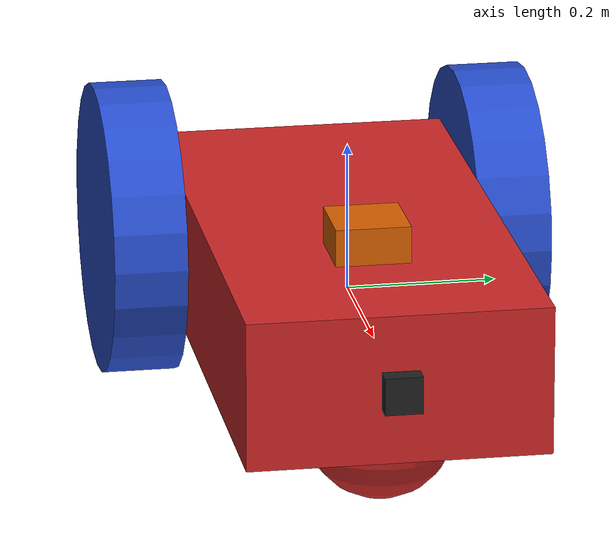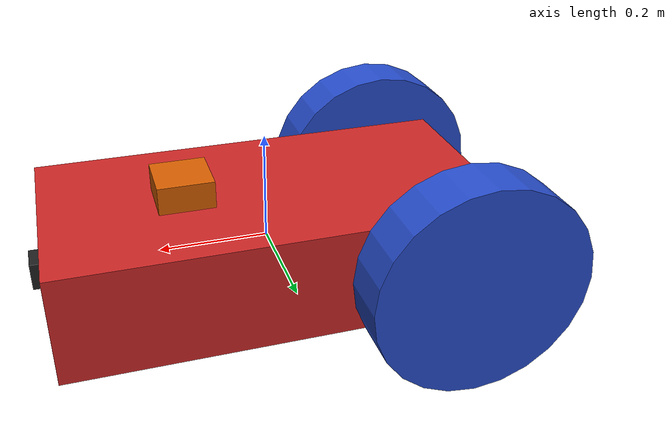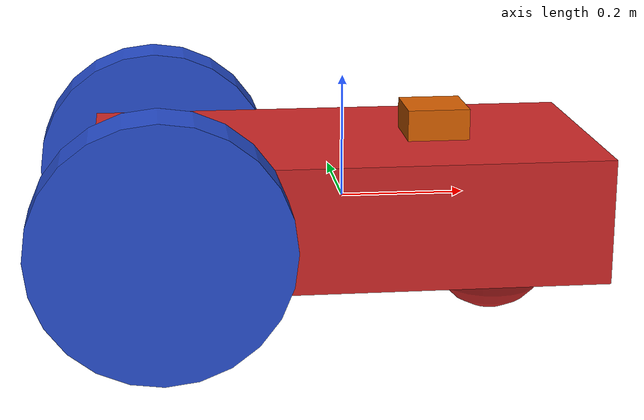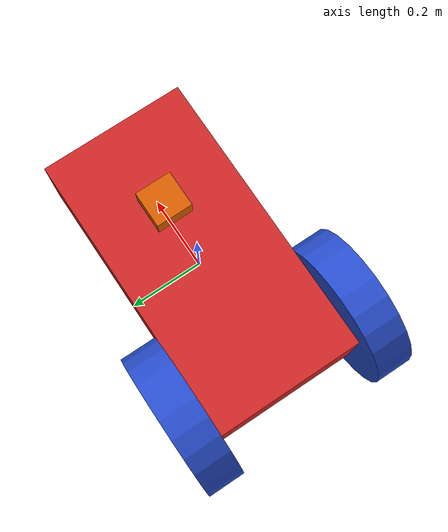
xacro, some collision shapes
<?xml version='1.0'?>

<robot name="my_robot" xmlns:xacro="http://www.ros.org/wiki/xacro">

	<xacro:include filename="$(find my_robot)/urdf/my_robot.gazebo" />
  <link name="robot_footprint"></link>

  <joint name="robot_footprint_joint" type="fixed">
    <origin xyz="0 0 0" rpy="0 0 0" />
    <parent link="robot_footprint"/>
    <child link="chassis" />
  </joint>

  <link name='chassis'>
    <pose>0.1 0 0.2 0 0 0</pose>

		<inertial>
      <mass value="15"/>
      <origin xyz="0.0 0 0" rpy=" 0 0 0"/>
      <inertia
          ixx="0.1" ixy="0" ixz="0"
          iyy="0.1" iyz="0"
          izz="0.1"
      />
    </inertial>

    <collision name='collision'>
      <origin xyz="0 0 0" rpy=" 0 0 0"/>
      <geometry>
        <box size=".8 .4 .2"/>
      </geometry>
    </collision>

    <visual name='chassis_visual'>
      <origin xyz="0 0 0" rpy=" 0 0 0"/>
      <geometry>
        <box size=".8 .4 .2"/>
			</geometry>
    </visual>

    <collision name='front_caster_collision'>
      <origin xyz="0.25 0 -0.1" rpy=" 0 0 0"/>
      <geometry>
        <sphere radius="0.1"/>
      </geometry>
    </collision>

    <visual name='front_caster_visual'>
      <origin xyz="0.25 0 -0.1" rpy=" 0 0 0"/>
      <geometry>
        <sphere radius="0.1"/>
      </geometry>
    </visual>

	</link>

  <link name="left_wheel">
	  <collision name='lw_collision'>
		  <origin xyz="0 0 0" rpy = "0 1.5707 1.5707"/>
		  <geometry>
			  <cylinder radius="0.2" length="0.1"/>
		  </geometry>
	  </collision>

	  <visual name='lw_visual'>
		  <origin xyz="0 0 0" rpy = "0 1.5707 1.5707"/>
		  <geometry>
			  <cylinder radius="0.2" length="0.1"/>
			</geometry>
	  </visual>

	  <inertial name='lw_inertial'>
		  <origin xyz="0 0 0" rpy = "0 1.5707 1.5707"/>
		  <mass value="5"/>
		  <inertia
			  ixx="0.1" ixy="0" ixz="0"
			  iyy="0.1" iyz="0"
			  izz="0.1"
			  />
	  </inertial>
	</link>

	<link name="right_wheel">
		<collision name='rw_collision'>
			<origin xyz="0 0 0" rpy = "0 1.5707 1.5707"/>
			<geometry>
				<cylinder radius="0.2" length="0.1"/>
			</geometry>
		</collision>

		<visual name='rw_visual'>
			<origin xyz="0 0 0" rpy = "0 1.5707 1.5707"/>
			<geometry>
				<cylinder radius="0.2" length="0.1"/>
			</geometry>
		</visual>

		<inertial name='rw_inertial'>
			<origin xyz="0 0 0" rpy = "0 1.5707 1.5707"/>
			<mass value="5"/>
			<inertia
				ixx="0.1" ixy="0" ixz="0"
				iyy="0.1" iyz="0"
				izz="0.1"
				/>
		</inertial>
	</link>

	<joint type="continuous" name="left_wheel_hinge">
    <origin xyz="-0.3 0.25 0" rpy="0 0 0"/>
    <child link="left_wheel"/>
    <parent link="chassis"/>
    <axis xyz="0 1 0" rpy="0 0 0"/>
    <limit effort="10000" velocity="1000"/>
    <dynamics damping="1.0" friction="1.0"/>
	</joint>

	<joint type="continuous" name="right_wheel_hinge">
    <origin xyz="-0.3 -0.25 0" rpy="0 0 0"/>
    <child link="right_wheel"/>
    <parent link="chassis"/>
    <axis xyz="0 1 0" rpy="0 0 0"/>
    <limit effort="10000" velocity="1000"/>
    <dynamics damping="1.0" friction="1.0"/>
	</joint>

	<link name="camera">
		<visual name="camera_visual">
			<origin xyz="0 0 0" rpy="0 0 0"/>
			<geometry>
				<box size="0.05 0.05 0.05"/>
			</geometry>
		</visual>

		<collision name="camera_collision">
			<origin xyz="0 0 0" rpy="0 0 0"/>
			<geometry>
				<box size="0.05 0.05 0.05"/>
			</geometry>
		</collision>

		<inertial name="camera_inertial">
			<inertia
				ixx="1e6" ixy="0" ixz="0"
				iyy="1e6" iyz="0"
				izz="1e-6"
				/>
			<mass value="0.1"/>
		</inertial>
	</link>

	<joint type="fixed" name="camera_joint">
		<origin xyz="0.4 0 0" rpy="0 0 0"/>
		<axis xyz="0 1 0" rpy="0 0 0"/>
		<parent link="chassis"/>
		<child link="camera"/>
	</joint>

	<link name="hokuyo">
		<visual name="hokuyo_visual">
			<geometry>
				<mesh filename="package://my_robot/meshes/hokuyo.dae"/>
			</geometry>
			<origin xyz="0 0 0" rpy="0 0 0"/>
		</visual>

		<collision name="hokuyo_collision">
			<geometry>
				<box size="0.1 0.1 0.1"/>
			</geometry>
			<origin xyz="0 0 0" rpy="0 0 0"/>
		</collision>

		<inertial name="hokuyo_inertial">
			<inertia
				ixx="1e-6" ixy="0" ixz="0"
				iyy="1e-6" iyz="0"
				izz="1e-6"
			/>
			<mass value="1e-5"/>
		</inertial>
	</link>

	<joint type="fixed" name="hokuyo_joint">
		<axis xyz="0 1 0" rpy="0 0 0"/>
		<origin xyz="0.15 0 0.1" rpy="0 0 0"/>
		<parent link="chassis"/>
		<child link="hokuyo"/>
	</joint>

</robot>
